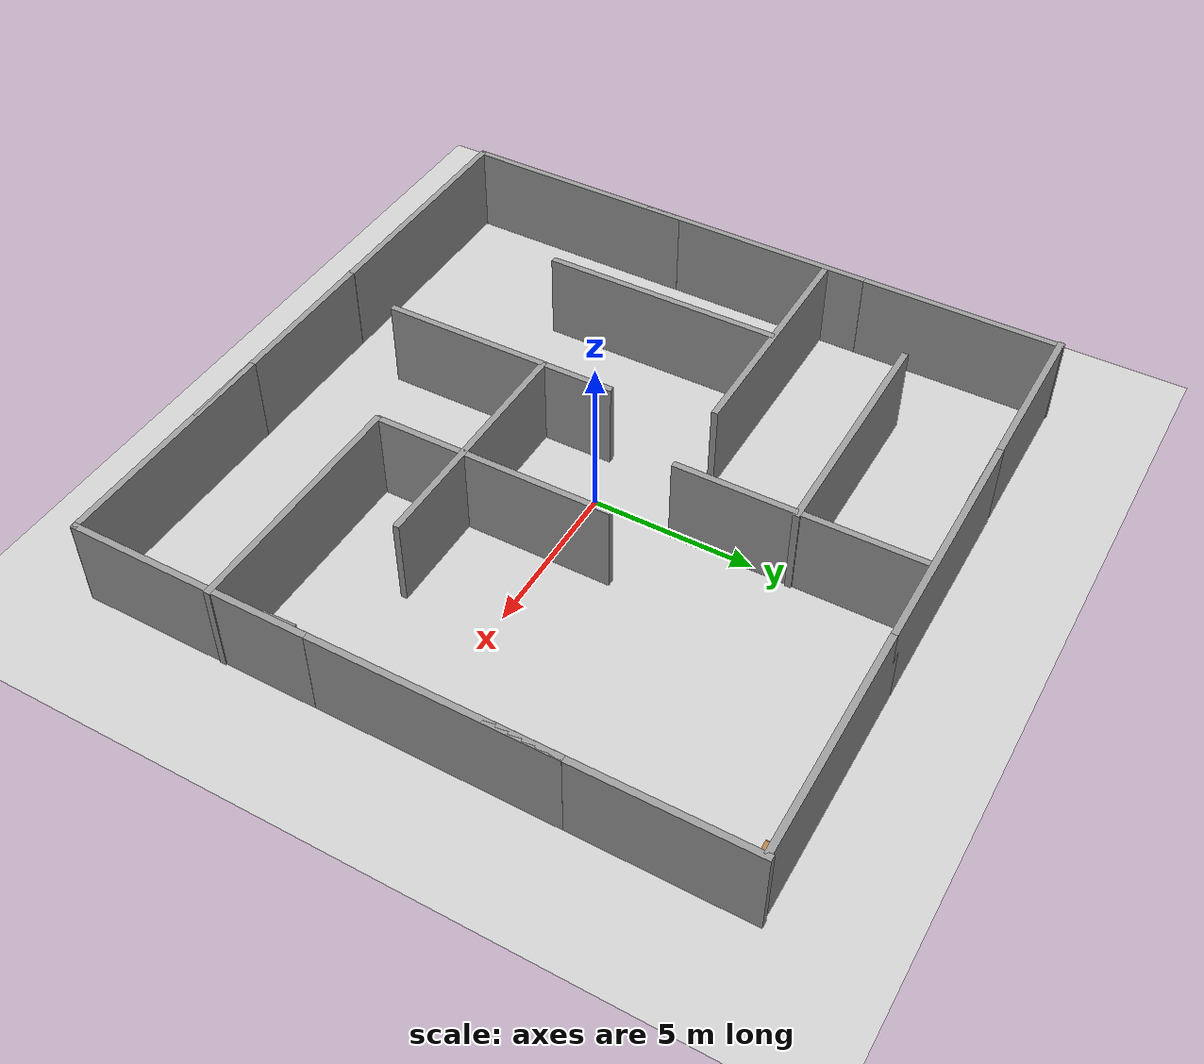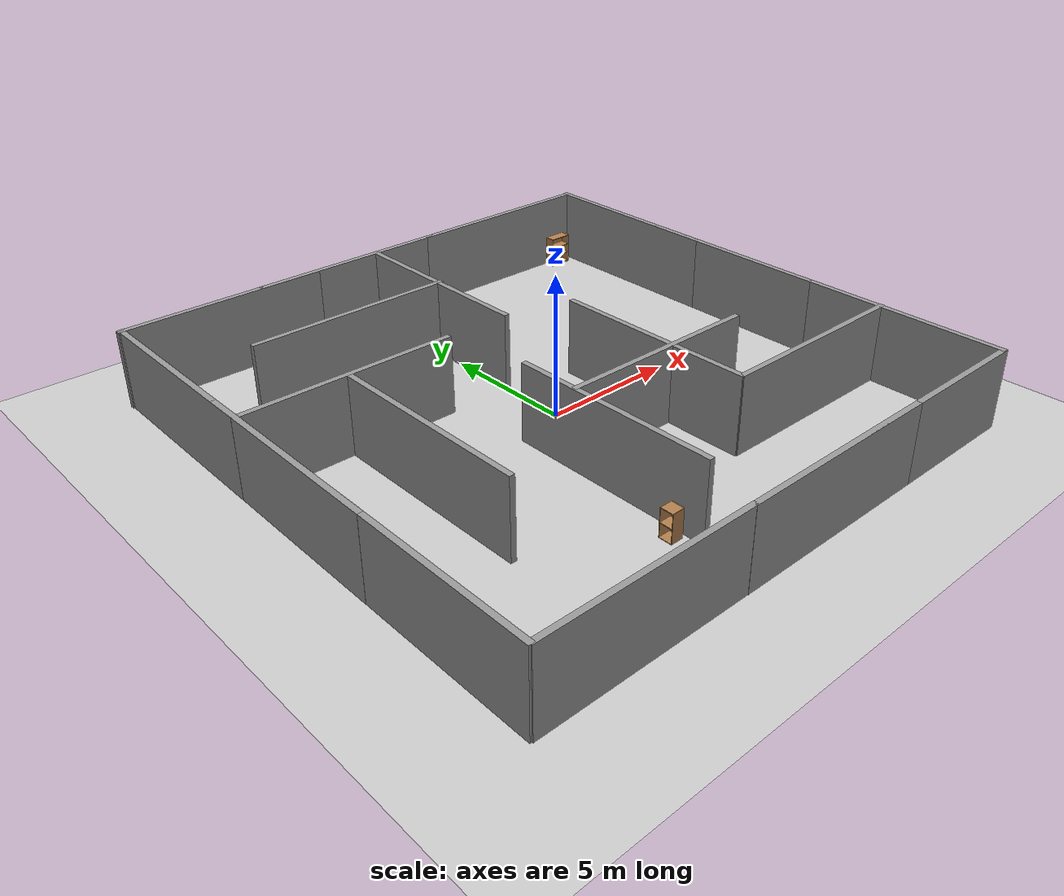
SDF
<sdf version="1.7">
 <world name="default">
  <light name="sun" type="directional">
   <pose>0 0 10 0 -0 0</pose>
   <diffuse>0.8 0.8 0.8 1</diffuse>
   <specular>0.2 0.2 0.2 1</specular>
   <attenuation>
    <range>1000</range>
    <constant>0.9</constant>
    <linear>0.01</linear>
    <quadratic>0.001</quadratic>
   </attenuation>
   <direction>-0.5 0.1 -0.9</direction>
   <spot><inner_angle>0</inner_angle><outer_angle>0</outer_angle><falloff>0</falloff></spot>
  </light>
  <model name="ground_plane">
   <static>1</static>
   <link name="link">
    <collision name="collision">
     <geometry><plane><normal>0 0 1</normal><size>100 100</size></plane></geometry>
     <surface>
      <contact><collide_bitmask>65535</collide_bitmask></contact>
      <friction><ode><mu>100</mu><mu2>50</mu2></ode></friction>
     </surface>
    </collision>
    <visual name="visual">
     <cast_shadows>0</cast_shadows>
     <geometry><plane><normal>0 0 1</normal><size>100 100</size></plane></geometry>
     <material>
      <script><uri>file://media/materials/scripts/gazebo.material</uri><name>Gazebo/Grey</name></script>
     </material>
    </visual>
   </link>
  </model>
  <gravity>0 0 -9.8</gravity>
  <magnetic_field>6e-06 2.3e-05 -4.2e-05</magnetic_field>
  <atmosphere type="adiabatic"/>
  <physics type="ode">
   <max_step_size>0.001</max_step_size>
   <real_time_factor>1</real_time_factor>
   <real_time_update_rate>1000</real_time_update_rate>
  </physics>
  <scene><ambient>0.4 0.4 0.4 1</ambient><background>0.7 0.7 0.7 1</background><shadows>1</shadows></scene>
  <spherical_coordinates>
   <surface_model>EARTH_WGS84</surface_model>
   <latitude_deg>0</latitude_deg>
   <longitude_deg>0</longitude_deg>
   <elevation>0</elevation>
   <heading_deg>0</heading_deg>
  </spherical_coordinates>
  <model name="grey_wall">
   <static>1</static>
   <link name="link">
    <pose>0 0 1.4 0 -0 0</pose>
    <collision name="collision"><geometry><box><size>7.5 0.2 2.8</size></box></geometry></collision>
    <visual name="visual">
     <cast_shadows>0</cast_shadows>
     <geometry><box><size>7.5 0.2 2.8</size></box></geometry>
     <material>
      <script>
       <uri>model://grey_wall/materials/scripts</uri>
       <uri>model://grey_wall/materials/textures</uri>
       <name>vrc/grey_wall</name>
      </script>
     </material>
    </visual>
   </link>
   <pose>-6.05595 2.50611 0 0 -0 0</pose>
  </model>
  <model name="grey_wall_0">
   <static>1</static>
   <link name="link">
    <pose>0 0 1.4 0 -0 0</pose>
    <collision name="collision"><geometry><box><size>7.5 0.2 2.8</size></box></geometry></collision>
    <visual name="visual">
     <cast_shadows>0</cast_shadows>
     <geometry><box><size>7.5 0.2 2.8</size></box></geometry>
     <material>
      <script>
       <uri>model://grey_wall/materials/scripts</uri>
       <uri>model://grey_wall/materials/textures</uri>
       <name>vrc/grey_wall</name>
      </script>
     </material>
    </visual>
   </link>
   <pose>-9.90034 6.29751 0 0 0 -1.57131</pose>
  </model>
  <model name="grey_wall_0_clone">
   <static>1</static>
   <link name="link">
    <pose>0 0 1.4 0 -0 0</pose>
    <collision name="collision"><geometry><box><size>7.5 0.2 2.8</size></box></geometry></collision>
    <visual name="visual">
     <cast_shadows>0</cast_shadows>
     <geometry><box><size>7.5 0.2 2.8</size></box></geometry>
     <material>
      <script>
       <uri>model://grey_wall/materials/scripts</uri>
       <uri>model://grey_wall/materials/textures</uri>
       <name>vrc/grey_wall</name>
      </script>
     </material>
    </visual>
   </link>
   <pose>-9.90034 0.015858 0 0 0 -1.57131</pose>
  </model>
  <model name="grey_wall_0_clone_clone">
   <static>1</static>
   <link name="link">
    <pose>0 0 1.4 0 -0 0</pose>
    <collision name="collision"><geometry><box><size>7.5 0.2 2.8</size></box></geometry></collision>
    <visual name="visual">
     <cast_shadows>0</cast_shadows>
     <geometry><box><size>7.5 0.2 2.8</size></box></geometry>
     <material>
      <script>
       <uri>model://grey_wall/materials/scripts</uri>
       <uri>model://grey_wall/materials/textures</uri>
       <name>vrc/grey_wall</name>
      </script>
     </material>
    </visual>
   </link>
   <pose>-9.90034 -6.30135 0 0 0 -1.57131</pose>
  </model>
  <model name="grey_wall_clone">
   <static>1</static>
   <link name="link">
    <pose>0 0 1.4 0 -0 0</pose>
    <collision name="collision"><geometry><box><size>7.5 0.2 2.8</size></box></geometry></collision>
    <visual name="visual">
     <cast_shadows>0</cast_shadows>
     <geometry><box><size>7.5 0.2 2.8</size></box></geometry>
     <material>
      <script>
       <uri>model://grey_wall/materials/scripts</uri>
       <uri>model://grey_wall/materials/textures</uri>
       <name>vrc/grey_wall</name>
      </script>
     </material>
    </visual>
   </link>
   <pose>2.49096 -1.86015 0 0 0 -1.56529</pose>
  </model>
  <model name="grey_wall_clone_1">
   <static>1</static>
   <link name="link">
    <pose>0 0 1.4 0 -0 0</pose>
    <collision name="collision"><geometry><box><size>7.5 0.2 2.8</size></box></geometry></collision>
    <visual name="visual">
     <cast_shadows>0</cast_shadows>
     <geometry><box><size>7.5 0.2 2.8</size></box></geometry>
     <material>
      <script>
       <uri>model://grey_wall/materials/scripts</uri>
       <uri>model://grey_wall/materials/textures</uri>
       <name>vrc/grey_wall</name>
      </script>
     </material>
    </visual>
   </link>
   <pose>-6.18766 -9.98541 0 0 -0 0</pose>
  </model>
  <model name="grey_wall_clone_2">
   <static>1</static>
   <link name="link">
    <pose>0 0 1.4 0 -0 0</pose>
    <collision name="collision"><geometry><box><size>7.5 0.2 2.8</size></box></geometry></collision>
    <visual name="visual">
     <cast_shadows>0</cast_shadows>
     <geometry><box><size>7.5 0.2 2.8</size></box></geometry>
     <material>
      <script>
       <uri>model://grey_wall/materials/scripts</uri>
       <uri>model://grey_wall/materials/textures</uri>
       <name>vrc/grey_wall</name>
      </script>
     </material>
    </visual>
   </link>
   <pose>1.21365 -9.99395 0 0 -0 0</pose>
  </model>
  <model name="grey_wall_clone_3">
   <static>1</static>
   <link name="link">
    <pose>0 0 1.4 0 -0 0</pose>
    <collision name="collision"><geometry><box><size>7.5 0.2 2.8</size></box></geometry></collision>
    <visual name="visual">
     <cast_shadows>0</cast_shadows>
     <geometry><box><size>7.5 0.2 2.8</size></box></geometry>
     <material>
      <script>
       <uri>model://grey_wall/materials/scripts</uri>
       <uri>model://grey_wall/materials/textures</uri>
       <name>vrc/grey_wall</name>
      </script>
     </material>
    </visual>
   </link>
   <pose>6.15418 -9.99373 0 0 -0 0</pose>
  </model>
  <model name="grey_wall_0_clone_0">
   <static>1</static>
   <link name="link">
    <pose>0 0 1.4 0 -0 0</pose>
    <collision name="collision"><geometry><box><size>7.5 0.2 2.8</size></box></geometry></collision>
    <visual name="visual">
     <cast_shadows>0</cast_shadows>
     <geometry><box><size>7.5 0.2 2.8</size></box></geometry>
     <material>
      <script>
       <uri>model://grey_wall/materials/scripts</uri>
       <uri>model://grey_wall/materials/textures</uri>
       <name>vrc/grey_wall</name>
      </script>
     </material>
    </visual>
   </link>
   <pose>9.82047 -6.31627 0 0 0 -1.57131</pose>
  </model>
  <model name="grey_wall_0_clone_1">
   <static>1</static>
   <link name="link">
    <pose>0 0 1.4 0 -0 0</pose>
    <collision name="collision"><geometry><box><size>7.5 0.2 2.8</size></box></geometry></collision>
    <visual name="visual">
     <cast_shadows>0</cast_shadows>
     <geometry><box><size>7.5 0.2 2.8</size></box></geometry>
     <material>
      <script>
       <uri>model://grey_wall/materials/scripts</uri>
       <uri>model://grey_wall/materials/textures</uri>
       <name>vrc/grey_wall</name>
      </script>
     </material>
    </visual>
   </link>
   <pose>9.82047 1.02648 0 0 0 -1.57131</pose>
  </model>
  <model name="grey_wall_0_clone_2">
   <static>1</static>
   <link name="link">
    <pose>0 0 1.4 0 -0 0</pose>
    <collision name="collision"><geometry><box><size>7.5 0.2 2.8</size></box></geometry></collision>
    <visual name="visual">
     <cast_shadows>0</cast_shadows>
     <geometry><box><size>7.5 0.2 2.8</size></box></geometry>
     <material>
      <script>
       <uri>model://grey_wall/materials/scripts</uri>
       <uri>model://grey_wall/materials/textures</uri>
       <name>vrc/grey_wall</name>
      </script>
     </material>
    </visual>
   </link>
   <pose>9.82047 6.33268 0 0 0 -1.57131</pose>
  </model>
  <model name="grey_wall_clone_3_clone">
   <static>1</static>
   <link name="link">
    <pose>0 0 1.4 0 -0 0</pose>
    <collision name="collision"><geometry><box><size>7.5 0.2 2.8</size></box></geometry></collision>
    <visual name="visual">
     <cast_shadows>0</cast_shadows>
     <geometry><box><size>7.5 0.2 2.8</size></box></geometry>
     <material>
      <script>
       <uri>model://grey_wall/materials/scripts</uri>
       <uri>model://grey_wall/materials/textures</uri>
       <name>vrc/grey_wall</name>
      </script>
     </material>
    </visual>
   </link>
   <pose>6.05268 9.93965 0 0 -0 0</pose>
  </model>
  <model name="grey_wall_clone_3_clone_0">
   <static>1</static>
   <link name="link">
    <pose>0 0 1.4 0 -0 0</pose>
    <collision name="collision"><geometry><box><size>7.5 0.2 2.8</size></box></geometry></collision>
    <visual name="visual">
     <cast_shadows>0</cast_shadows>
     <geometry><box><size>7.5 0.2 2.8</size></box></geometry>
     <material>
      <script>
       <uri>model://grey_wall/materials/scripts</uri>
       <uri>model://grey_wall/materials/textures</uri>
       <name>vrc/grey_wall</name>
      </script>
     </material>
    </visual>
   </link>
   <pose>-1.11806 9.93965 0 0 -0 0</pose>
  </model>
  <model name="grey_wall_clone_3_clone_1">
   <static>1</static>
   <link name="link">
    <pose>0 0 1.4 0 -0 0</pose>
    <collision name="collision"><geometry><box><size>7.5 0.2 2.8</size></box></geometry></collision>
    <visual name="visual">
     <cast_shadows>0</cast_shadows>
     <geometry><box><size>7.5 0.2 2.8</size></box></geometry>
     <material>
      <script>
       <uri>model://grey_wall/materials/scripts</uri>
       <uri>model://grey_wall/materials/textures</uri>
       <name>vrc/grey_wall</name>
      </script>
     </material>
    </visual>
   </link>
   <pose>-6.29369 9.92749 0 0 -0 0</pose>
  </model>
  <model name="unit_box">
   <pose>9.06478 -4.55983 0.5 0 -0 0.02991</pose>
   <link name="link">
    <inertial>
     <mass>1</mass>
     <inertia>
      <ixx>0.166667</ixx>
      <ixy>0</ixy>
      <ixz>0</ixz>
      <iyy>0.166667</iyy>
      <iyz>0</iyz>
      <izz>0.166667</izz>
     </inertia>
    </inertial>
    <collision name="collision"><geometry><box><size>1 1 1</size></box></geometry></collision>
    <visual name="visual">
     <geometry><box><size>1 1 1</size></box></geometry>
     <material>
      <script><name>Gazebo/Grey</name><uri>file://media/materials/scripts/gazebo.material</uri></script>
     </material>
    </visual>
   </link>
  </model>
  <model name="grey_wall_clone_clone_1">
   <static>1</static>
   <link name="link">
    <pose>0 0 1.4 0 -0 0</pose>
    <collision name="collision"><geometry><box><size>7.5 0.2 2.8</size></box></geometry></collision>
    <visual name="visual">
     <cast_shadows>0</cast_shadows>
     <geometry><box><size>7.5 0.2 2.8</size></box></geometry>
     <material>
      <script>
       <uri>model://grey_wall/materials/scripts</uri>
       <uri>model://grey_wall/materials/textures</uri>
       <name>vrc/grey_wall</name>
      </script>
     </material>
    </visual>
   </link>
   <pose>-6.11861 -1.23657 0 0 0 -1.56529</pose>
  </model>
  <model name="grey_wall_clone_clone_2">
   <static>1</static>
   <link name="link">
    <pose>0 0 1.4 0 -0 0</pose>
    <collision name="collision"><geometry><box><size>7.5 0.2 2.8</size></box></geometry></collision>
    <visual name="visual">
     <cast_shadows>0</cast_shadows>
     <geometry><box><size>7.5 0.2 2.8</size></box></geometry>
     <material>
      <script>
       <uri>model://grey_wall/materials/scripts</uri>
       <uri>model://grey_wall/materials/textures</uri>
       <name>vrc/grey_wall</name>
      </script>
     </material>
    </visual>
   </link>
   <pose>-1.72746 -4.2047 0 0 0 -1.56529</pose>
  </model>
  <model name="grey_wall_clone_clone_2_clone_0">
   <static>1</static>
   <link name="link">
    <pose>0 0 1.4 0 -0 0</pose>
    <collision name="collision"><geometry><box><size>7.5 0.2 2.8</size></box></geometry></collision>
    <visual name="visual">
     <cast_shadows>0</cast_shadows>
     <geometry><box><size>7.5 0.2 2.8</size></box></geometry>
     <material>
      <script>
       <uri>model://grey_wall/materials/scripts</uri>
       <uri>model://grey_wall/materials/textures</uri>
       <name>vrc/grey_wall</name>
      </script>
     </material>
    </visual>
   </link>
   <pose>0.020787 6.18463 0 0 0 -1.56529</pose>
  </model>
  <model name="grey_wall_clone_clone_clone">
   <static>1</static>
   <link name="link">
    <pose>0 0 1.4 0 -0 0</pose>
    <collision name="collision"><geometry><box><size>7.5 0.2 2.8</size></box></geometry></collision>
    <visual name="visual">
     <cast_shadows>0</cast_shadows>
     <geometry><box><size>7.5 0.2 2.8</size></box></geometry>
     <material>
      <script>
       <uri>model://grey_wall/materials/scripts</uri>
       <uri>model://grey_wall/materials/textures</uri>
       <name>vrc/grey_wall</name>
      </script>
     </material>
    </visual>
   </link>
   <pose>-3.57108 6.1548 0 0 -0 0</pose>
  </model>
  <model name="grey_wall_clone_0_clone">
   <static>1</static>
   <link name="link">
    <pose>0 0 1.4 0 -0 0</pose>
    <collision name="collision"><geometry><box><size>7.5 0.2 2.8</size></box></geometry></collision>
    <visual name="visual">
     <cast_shadows>0</cast_shadows>
     <geometry><box><size>7.5 0.2 2.8</size></box></geometry>
     <material>
      <script>
       <uri>model://grey_wall/materials/scripts</uri>
       <uri>model://grey_wall/materials/textures</uri>
       <name>vrc/grey_wall</name>
      </script>
     </material>
    </visual>
   </link>
   <pose>6.20363 -5.53985 0 0 -0 0</pose>
  </model>
  <model name="grey_wall_clone_0_clone_1">
   <static>1</static>
   <link name="link">
    <pose>0 0 1.4 0 -0 0</pose>
    <collision name="collision"><geometry><box><size>7.5 0.2 2.8</size></box></geometry></collision>
    <visual name="visual">
     <cast_shadows>0</cast_shadows>
     <geometry><box><size>7.5 0.2 2.8</size></box></geometry>
     <material>
      <script>
       <uri>model://grey_wall/materials/scripts</uri>
       <uri>model://grey_wall/materials/textures</uri>
       <name>vrc/grey_wall</name>
      </script>
     </material>
    </visual>
   </link>
   <pose>1.9589 -2.72441 0 0 -0 0</pose>
  </model>
  <model name="bookshelf">
   <static>1</static>
   <link name="link">
    <inertial><mass>1</mass></inertial>
    <collision name="back">
     <pose>0 0.005 0.6 0 -0 0</pose>
     <geometry><box><size>0.9 0.01 1.2</size></box></geometry>
    </collision>
    <visual name="visual1">
     <pose>0 0.005 0.6 0 -0 0</pose>
     <geometry><box><size>0.9 0.01 1.2</size></box></geometry>
     <material>
      <script><uri>file://media/materials/scripts/gazebo.material</uri><name>Gazebo/Wood</name></script>
     </material>
    </visual>
    <collision name="left_side">
     <pose>0.45 -0.195 0.6 0 -0 0</pose>
     <geometry><box><size>0.02 0.4 1.2</size></box></geometry>
    </collision>
    <visual name="visual2">
     <pose>0.45 -0.195 0.6 0 -0 0</pose>
     <geometry><box><size>0.02 0.4 1.2</size></box></geometry>
     <material>
      <script><uri>file://media/materials/scripts/gazebo.material</uri><name>Gazebo/Wood</name></script>
     </material>
    </visual>
    <collision name="right_side">
     <pose>-0.45 -0.195 0.6 0 -0 0</pose>
     <geometry><box><size>0.02 0.4 1.2</size></box></geometry>
    </collision>
    <visual name="visual3">
     <pose>-0.45 -0.195 0.6 0 -0 0</pose>
     <geometry><box><size>0.02 0.4 1.2</size></box></geometry>
     <material>
      <script><uri>file://media/materials/scripts/gazebo.material</uri><name>Gazebo/Wood</name></script>
     </material>
    </visual>
    <collision name="bottom">
     <pose>0 -0.195 0.03 0 -0 0</pose>
     <geometry><box><size>0.88 0.4 0.06</size></box></geometry>
    </collision>
    <visual name="visual4">
     <pose>0 -0.195 0.03 0 -0 0</pose>
     <geometry><box><size>0.88 0.4 0.06</size></box></geometry>
     <material>
      <script><uri>file://media/materials/scripts/gazebo.material</uri><name>Gazebo/Wood</name></script>
     </material>
    </visual>
    <collision name="top">
     <pose>0 -0.195 1.19 0 -0 0</pose>
     <geometry><box><size>0.88 0.4 0.02</size></box></geometry>
    </collision>
    <visual name="visual5">
     <pose>0 -0.195 1.19 0 -0 0</pose>
     <geometry><box><size>0.88 0.4 0.02</size></box></geometry>
     <material>
      <script><uri>file://media/materials/scripts/gazebo.material</uri><name>Gazebo/Wood</name></script>
     </material>
    </visual>
    <collision name="low_shelf">
     <pose>0 -0.195 0.43 0 -0 0</pose>
     <geometry><box><size>0.88 0.4 0.02</size></box></geometry>
    </collision>
    <visual name="visual6">
     <pose>0 -0.195 0.43 0 -0 0</pose>
     <geometry><box><size>0.88 0.4 0.02</size></box></geometry>
     <material>
      <script><uri>file://media/materials/scripts/gazebo.material</uri><name>Gazebo/Wood</name></script>
     </material>
    </visual>
    <collision name="high_shelf">
     <pose>0 -0.195 0.8 0 -0 0</pose>
     <geometry><box><size>0.88 0.4 0.02</size></box></geometry>
    </collision>
    <visual name="visual7">
     <pose>0 -0.195 0.8 0 -0 0</pose>
     <geometry><box><size>0.88 0.4 0.02</size></box></geometry>
     <material>
      <script><uri>file://media/materials/scripts/gazebo.material</uri><name>Gazebo/Wood</name></script>
     </material>
    </visual>
   </link>
   <pose>8.93919 9.78649 0 0 -0 0</pose>
  </model>
  <model name="cabinet">
   <static>1</static>
   <link name="cabinet_bottom_plate">
    <inertial>
     <pose>0 0 -1 0 -0 0</pose>
     <inertia><ixx>2.05</ixx><ixy>0</ixy><ixz>0</ixz><iyy>2.05</iyy><iyz>0</iyz><izz>2.05</izz></inertia>
     <mass>25</mass>
    </inertial>
    <collision name="cabinet_bottom_plate_geom">
     <pose>0 0 0.01 0 -0 0</pose>
     <geometry><box><size>0.45 0.45 0.02</size></box></geometry>
    </collision>
    <visual name="cabinet_bottom_plate_geom_visual">
     <pose>0 0 0.01 0 -0 0</pose>
     <geometry><box><size>0.45 0.45 0.02</size></box></geometry>
     <material>
      <script><uri>file://media/materials/scripts/gazebo.material</uri><name>Gazebo/Wood</name></script>
     </material>
    </visual>
    <collision name="cabinet_bottom_plate_geom_cabinet_back_plate">
     <pose>0.235 0 0.51 0 -0 0</pose>
     <geometry><box><size>0.02 0.45 1.02</size></box></geometry>
    </collision>
    <visual name="cabinet_bottom_plate_geom_cabinet_back_plate_visual">
     <pose>0.235 0 0.51 0 -0 0</pose>
     <geometry><box><size>0.02 0.45 1.02</size></box></geometry>
     <material>
      <script><uri>file://media/materials/scripts/gazebo.material</uri><name>Gazebo/Wood</name></script>
     </material>
    </visual>
    <collision name="cabinet_bottom_plate_geom_cabinet_left_plate">
     <pose>0 0.235 0.51 0 -0 0</pose>
     <geometry><box><size>0.45 0.02 1.02</size></box></geometry>
    </collision>
    <visual name="cabinet_bottom_plate_geom_cabinet_left_plate_visual">
     <pose>0 0.235 0.51 0 -0 0</pose>
     <geometry><box><size>0.45 0.02 1.02</size></box></geometry>
     <material>
      <script><uri>file://media/materials/scripts/gazebo.material</uri><name>Gazebo/Wood</name></script>
     </material>
    </visual>
    <collision name="cabinet_bottom_plate_geom_cabinet_middle_plate">
     <pose>0 0 0.51 0 -0 0</pose>
     <geometry><box><size>0.45 0.45 0.02</size></box></geometry>
    </collision>
    <visual name="cabinet_bottom_plate_geom_cabinet_middle_plate_visual">
     <pose>0 0 0.51 0 -0 0</pose>
     <geometry><box><size>0.45 0.45 0.02</size></box></geometry>
     <material>
      <script><uri>file://media/materials/scripts/gazebo.material</uri><name>Gazebo/Wood</name></script>
     </material>
    </visual>
    <collision name="cabinet_bottom_plate_geom_cabinet_right_plate">
     <pose>0 -0.235 0.51 0 -0 0</pose>
     <geometry><box><size>0.45 0.02 1.02</size></box></geometry>
    </collision>
    <visual name="cabinet_bottom_plate_geom_cabinet_right_plate_visual">
     <pose>0 -0.235 0.51 0 -0 0</pose>
     <geometry><box><size>0.45 0.02 1.02</size></box></geometry>
     <material>
      <script><uri>file://media/materials/scripts/gazebo.material</uri><name>Gazebo/Wood</name></script>
     </material>
    </visual>
    <collision name="cabinet_bottom_plate_geom_cabinet_top_plate">
     <pose>0 0 1.01 0 -0 0</pose>
     <geometry><box><size>0.45 0.45 0.02</size></box></geometry>
    </collision>
    <visual name="cabinet_bottom_plate_geom_cabinet_top_plate_visual">
     <pose>0 0 1.01 0 -0 0</pose>
     <geometry><box><size>0.45 0.45 0.02</size></box></geometry>
     <material>
      <script><uri>file://media/materials/scripts/gazebo.material</uri><name>Gazebo/Wood</name></script>
     </material>
    </visual>
   </link>
   <pose>-2.19693 -7.08812 0 0 -0 0</pose>
  </model>
 </world>
</sdf>
